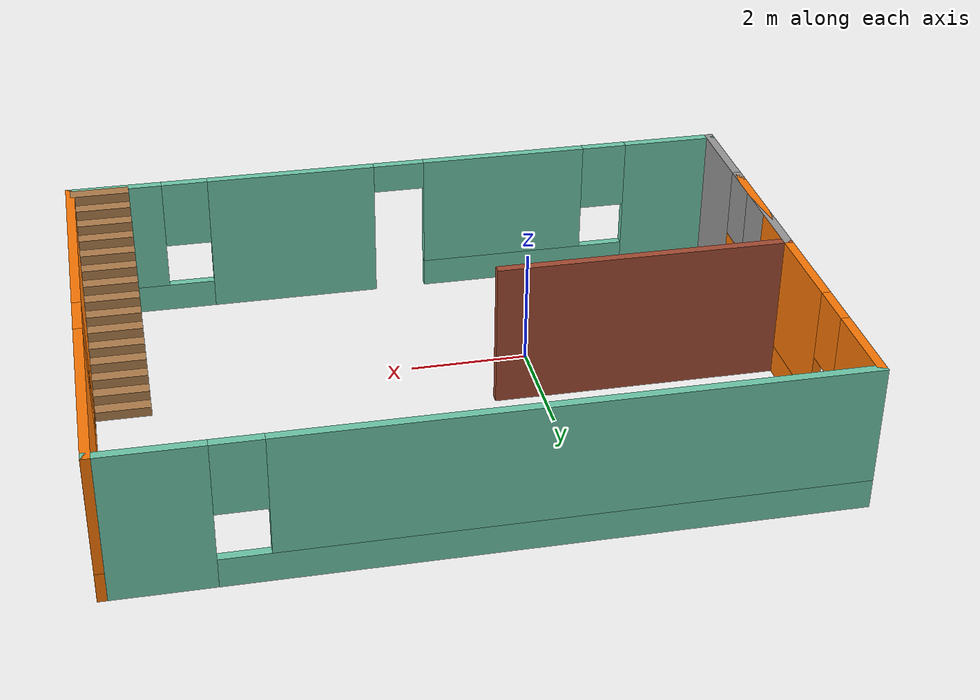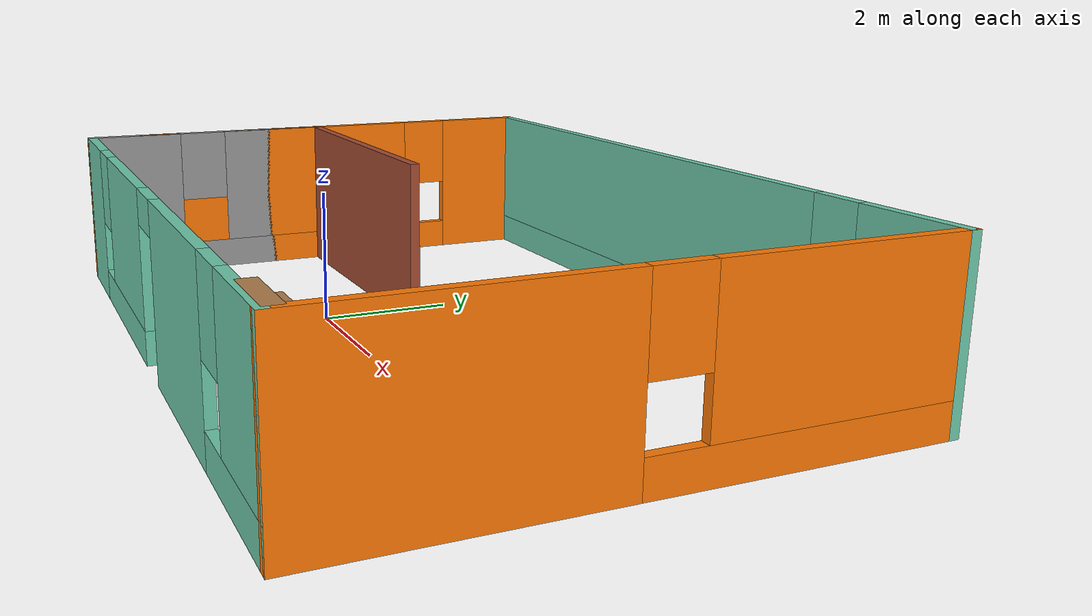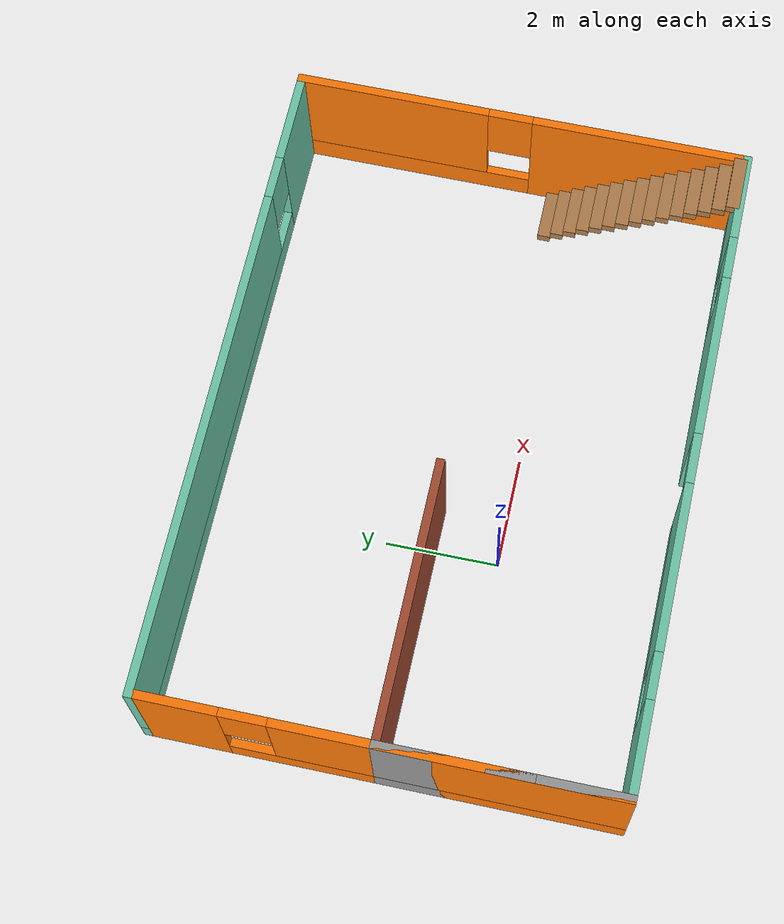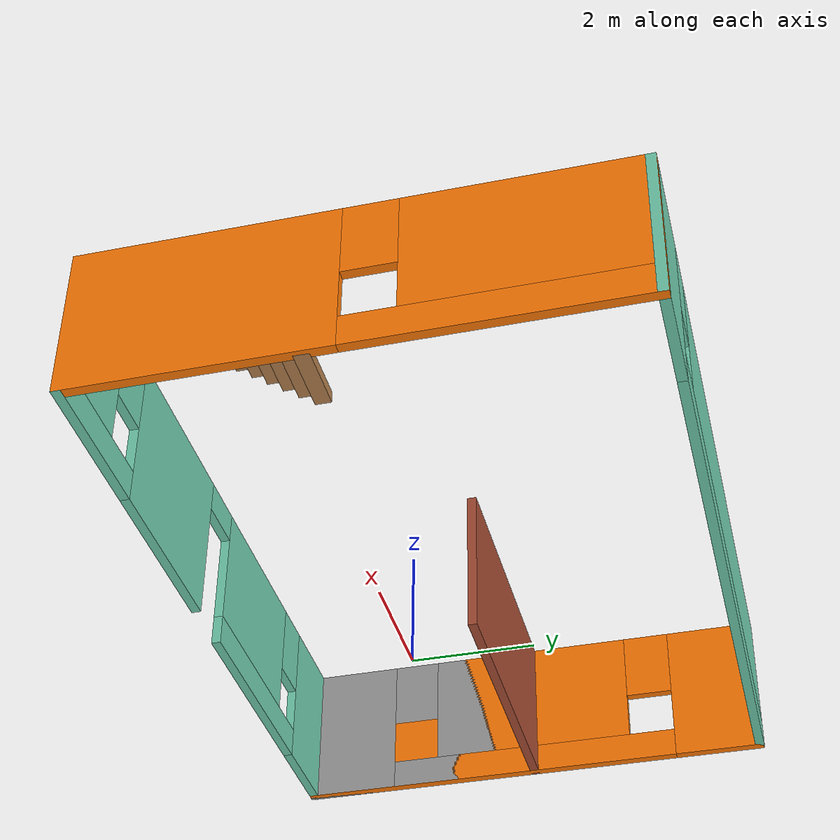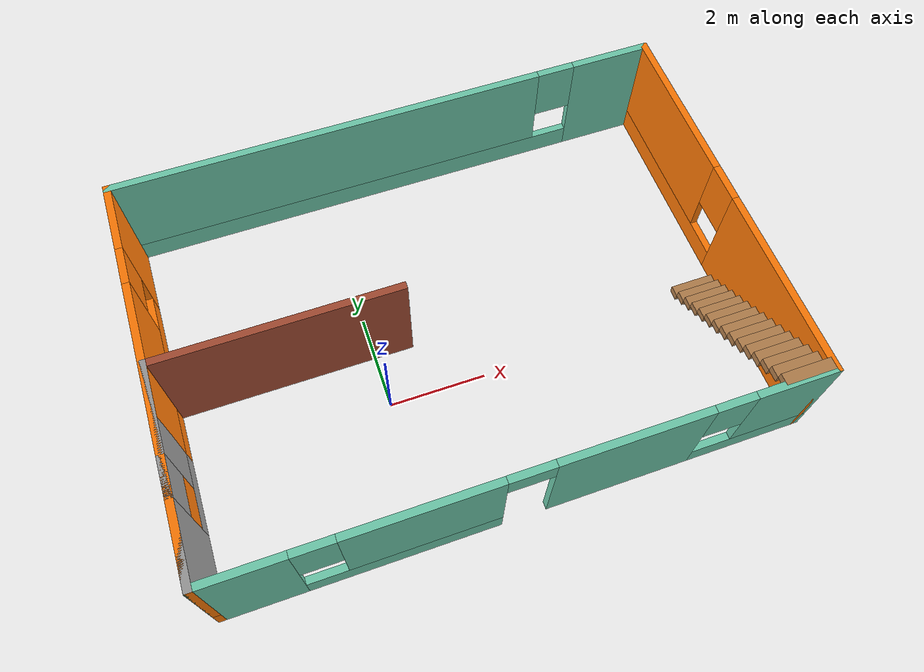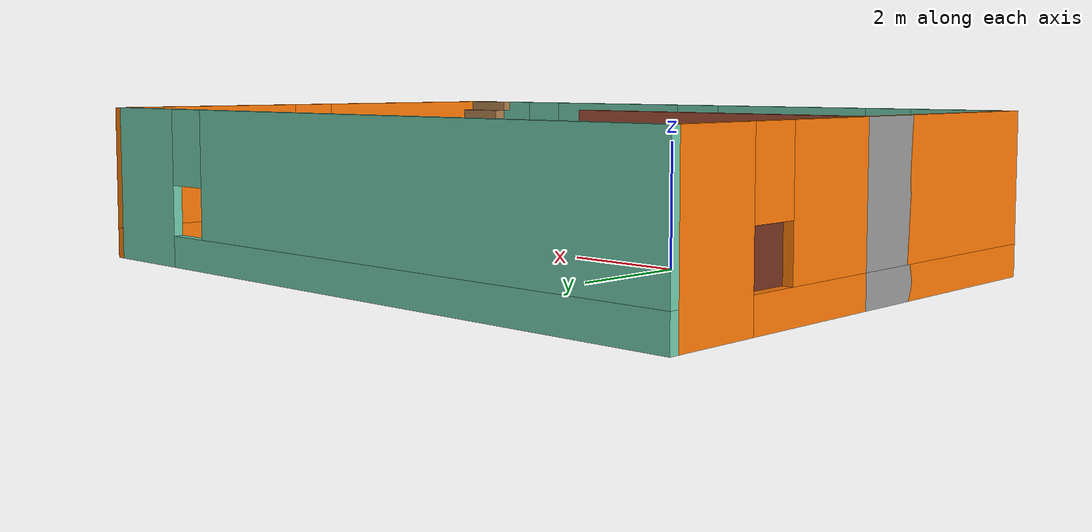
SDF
<?xml version='1.0'?>
<sdf version='1.6'>
  <model name='Wall'>
    <pose frame=''>1.69 1.13 0 0 -0 0</pose>
    <link name='Stairs_0'>
      <visual name='Stairs_0_Visual_0'>
        <pose frame=''>5.29734 -0.669935 0.083333 0 -0 0</pose>
        <geometry>
          <box>
            <size>1 0.233333 0.166667</size>
          </box>
        </geometry>
        <material>
          <script>
            <uri>file://media/materials/scripts/gazebo.material</uri>
            <name>Gazebo/Wood</name>
          </script>
          <ambient>1 1 1 1</ambient>
        </material>
        <meta>
          <layer>0</layer>
        </meta>
      </visual>
      <collision name='Stairs_0_Collision_0'>
        <geometry>
          <box>
            <size>1 0.233333 0.166667</size>
          </box>
        </geometry>
        <pose frame=''>5.29734 -0.669935 0.083333 0 -0 0</pose>
      </collision>
      <visual name='Stairs_0_Visual_1'>
        <pose frame=''>5.29734 -0.903268 0.25 0 -0 0</pose>
        <geometry>
          <box>
            <size>1 0.233333 0.166667</size>
          </box>
        </geometry>
        <material>
          <script>
            <uri>file://media/materials/scripts/gazebo.material</uri>
            <name>Gazebo/Wood</name>
          </script>
          <ambient>1 1 1 1</ambient>
        </material>
        <meta>
          <layer>0</layer>
        </meta>
      </visual>
      <collision name='Stairs_0_Collision_1'>
        <geometry>
          <box>
            <size>1 0.233333 0.166667</size>
          </box>
        </geometry>
        <pose frame=''>5.29734 -0.903268 0.25 0 -0 0</pose>
      </collision>
      <visual name='Stairs_0_Visual_2'>
        <pose frame=''>5.29734 -1.1366 0.416667 0 -0 0</pose>
        <geometry>
          <box>
            <size>1 0.233333 0.166667</size>
          </box>
        </geometry>
        <material>
          <script>
            <uri>file://media/materials/scripts/gazebo.material</uri>
            <name>Gazebo/Wood</name>
          </script>
          <ambient>1 1 1 1</ambient>
        </material>
        <meta>
          <layer>0</layer>
        </meta>
      </visual>
      <collision name='Stairs_0_Collision_2'>
        <geometry>
          <box>
            <size>1 0.233333 0.166667</size>
          </box>
        </geometry>
        <pose frame=''>5.29734 -1.1366 0.416667 0 -0 0</pose>
      </collision>
      <visual name='Stairs_0_Visual_3'>
        <pose frame=''>5.29734 -1.36993 0.583333 0 -0 0</pose>
        <geometry>
          <box>
            <size>1 0.233333 0.166667</size>
          </box>
        </geometry>
        <material>
          <script>
            <uri>file://media/materials/scripts/gazebo.material</uri>
            <name>Gazebo/Wood</name>
          </script>
          <ambient>1 1 1 1</ambient>
        </material>
        <meta>
          <layer>0</layer>
        </meta>
      </visual>
      <collision name='Stairs_0_Collision_3'>
        <geometry>
          <box>
            <size>1 0.233333 0.166667</size>
          </box>
        </geometry>
        <pose frame=''>5.29734 -1.36993 0.583333 0 -0 0</pose>
      </collision>
      <visual name='Stairs_0_Visual_4'>
        <pose frame=''>5.29734 -1.60327 0.75 0 -0 0</pose>
        <geometry>
          <box>
            <size>1 0.233333 0.166667</size>
          </box>
        </geometry>
        <material>
          <script>
            <uri>file://media/materials/scripts/gazebo.material</uri>
            <name>Gazebo/Wood</name>
          </script>
          <ambient>1 1 1 1</ambient>
        </material>
        <meta>
          <layer>0</layer>
        </meta>
      </visual>
      <collision name='Stairs_0_Collision_4'>
        <geometry>
          <box>
            <size>1 0.233333 0.166667</size>
          </box>
        </geometry>
        <pose frame=''>5.29734 -1.60327 0.75 0 -0 0</pose>
      </collision>
      <visual name='Stairs_0_Visual_5'>
        <pose frame=''>5.29734 -1.8366 0.916667 0 -0 0</pose>
        <geometry>
          <box>
            <size>1 0.233333 0.166667</size>
          </box>
        </geometry>
        <material>
          <script>
            <uri>file://media/materials/scripts/gazebo.material</uri>
            <name>Gazebo/Wood</name>
          </script>
          <ambient>1 1 1 1</ambient>
        </material>
        <meta>
          <layer>0</layer>
        </meta>
      </visual>
      <collision name='Stairs_0_Collision_5'>
        <geometry>
          <box>
            <size>1 0.233333 0.166667</size>
          </box>
        </geometry>
        <pose frame=''>5.29734 -1.8366 0.916667 0 -0 0</pose>
      </collision>
      <visual name='Stairs_0_Visual_6'>
        <pose frame=''>5.29734 -2.06994 1.08333 0 -0 0</pose>
        <geometry>
          <box>
            <size>1 0.233333 0.166667</size>
          </box>
        </geometry>
        <material>
          <script>
            <uri>file://media/materials/scripts/gazebo.material</uri>
            <name>Gazebo/Wood</name>
          </script>
          <ambient>1 1 1 1</ambient>
        </material>
        <meta>
          <layer>0</layer>
        </meta>
      </visual>
      <collision name='Stairs_0_Collision_6'>
        <geometry>
          <box>
            <size>1 0.233333 0.166667</size>
          </box>
        </geometry>
        <pose frame=''>5.29734 -2.06994 1.08333 0 -0 0</pose>
      </collision>
      <visual name='Stairs_0_Visual_7'>
        <pose frame=''>5.29734 -2.30327 1.25 0 -0 0</pose>
        <geometry>
          <box>
            <size>1 0.233333 0.166667</size>
          </box>
        </geometry>
        <material>
          <script>
            <uri>file://media/materials/scripts/gazebo.material</uri>
            <name>Gazebo/Wood</name>
          </script>
          <ambient>1 1 1 1</ambient>
        </material>
        <meta>
          <layer>0</layer>
        </meta>
      </visual>
      <collision name='Stairs_0_Collision_7'>
        <geometry>
          <box>
            <size>1 0.233333 0.166667</size>
          </box>
        </geometry>
        <pose frame=''>5.29734 -2.30327 1.25 0 -0 0</pose>
      </collision>
      <visual name='Stairs_0_Visual_8'>
        <pose frame=''>5.29734 -2.5366 1.41667 0 -0 0</pose>
        <geometry>
          <box>
            <size>1 0.233333 0.166667</size>
          </box>
        </geometry>
        <material>
          <script>
            <uri>file://media/materials/scripts/gazebo.material</uri>
            <name>Gazebo/Wood</name>
          </script>
          <ambient>1 1 1 1</ambient>
        </material>
        <meta>
          <layer>0</layer>
        </meta>
      </visual>
      <collision name='Stairs_0_Collision_8'>
        <geometry>
          <box>
            <size>1 0.233333 0.166667</size>
          </box>
        </geometry>
        <pose frame=''>5.29734 -2.5366 1.41667 0 -0 0</pose>
      </collision>
      <visual name='Stairs_0_Visual_9'>
        <pose frame=''>5.29734 -2.76993 1.58333 0 -0 0</pose>
        <geometry>
          <box>
            <size>1 0.233333 0.166667</size>
          </box>
        </geometry>
        <material>
          <script>
            <uri>file://media/materials/scripts/gazebo.material</uri>
            <name>Gazebo/Wood</name>
          </script>
          <ambient>1 1 1 1</ambient>
        </material>
        <meta>
          <layer>0</layer>
        </meta>
      </visual>
      <collision name='Stairs_0_Collision_9'>
        <geometry>
          <box>
            <size>1 0.233333 0.166667</size>
          </box>
        </geometry>
        <pose frame=''>5.29734 -2.76993 1.58333 0 -0 0</pose>
      </collision>
      <visual name='Stairs_0_Visual_10'>
        <pose frame=''>5.29734 -3.00327 1.75 0 -0 0</pose>
        <geometry>
          <box>
            <size>1 0.233333 0.166667</size>
          </box>
        </geometry>
        <material>
          <script>
            <uri>file://media/materials/scripts/gazebo.material</uri>
            <name>Gazebo/Wood</name>
          </script>
          <ambient>1 1 1 1</ambient>
        </material>
        <meta>
          <layer>0</layer>
        </meta>
      </visual>
      <collision name='Stairs_0_Collision_10'>
        <geometry>
          <box>
            <size>1 0.233333 0.166667</size>
          </box>
        </geometry>
        <pose frame=''>5.29734 -3.00327 1.75 0 -0 0</pose>
      </collision>
      <visual name='Stairs_0_Visual_11'>
        <pose frame=''>5.29734 -3.2366 1.91667 0 -0 0</pose>
        <geometry>
          <box>
            <size>1 0.233333 0.166667</size>
          </box>
        </geometry>
        <material>
          <script>
            <uri>file://media/materials/scripts/gazebo.material</uri>
            <name>Gazebo/Wood</name>
          </script>
          <ambient>1 1 1 1</ambient>
        </material>
        <meta>
          <layer>0</layer>
        </meta>
      </visual>
      <collision name='Stairs_0_Collision_11'>
        <geometry>
          <box>
            <size>1 0.233333 0.166667</size>
          </box>
        </geometry>
        <pose frame=''>5.29734 -3.2366 1.91667 0 -0 0</pose>
      </collision>
      <visual name='Stairs_0_Visual_12'>
        <pose frame=''>5.29734 -3.46993 2.08333 0 -0 0</pose>
        <geometry>
          <box>
            <size>1 0.233333 0.166667</size>
          </box>
        </geometry>
        <material>
          <script>
            <uri>file://media/materials/scripts/gazebo.material</uri>
            <name>Gazebo/Wood</name>
          </script>
          <ambient>1 1 1 1</ambient>
        </material>
        <meta>
          <layer>0</layer>
        </meta>
      </visual>
      <collision name='Stairs_0_Collision_12'>
        <geometry>
          <box>
            <size>1 0.233333 0.166667</size>
          </box>
        </geometry>
        <pose frame=''>5.29734 -3.46993 2.08333 0 -0 0</pose>
      </collision>
      <visual name='Stairs_0_Visual_13'>
        <pose frame=''>5.29734 -3.70327 2.25 0 -0 0</pose>
        <geometry>
          <box>
            <size>1 0.233333 0.166667</size>
          </box>
        </geometry>
        <material>
          <script>
            <uri>file://media/materials/scripts/gazebo.material</uri>
            <name>Gazebo/Wood</name>
          </script>
          <ambient>1 1 1 1</ambient>
        </material>
        <meta>
          <layer>0</layer>
        </meta>
      </visual>
      <collision name='Stairs_0_Collision_13'>
        <geometry>
          <box>
            <size>1 0.233333 0.166667</size>
          </box>
        </geometry>
        <pose frame=''>5.29734 -3.70327 2.25 0 -0 0</pose>
      </collision>
      <visual name='Stairs_0_Visual_14'>
        <pose frame=''>5.29734 -3.9366 2.41667 0 -0 0</pose>
        <geometry>
          <box>
            <size>1 0.233333 0.166667</size>
          </box>
        </geometry>
        <material>
          <script>
            <uri>file://media/materials/scripts/gazebo.material</uri>
            <name>Gazebo/Wood</name>
          </script>
          <ambient>1 1 1 1</ambient>
        </material>
        <meta>
          <layer>0</layer>
        </meta>
      </visual>
      <collision name='Stairs_0_Collision_14'>
        <geometry>
          <box>
            <size>1 0.233333 0.166667</size>
          </box>
        </geometry>
        <pose frame=''>5.29734 -3.9366 2.41667 0 -0 0</pose>
      </collision>
    </link>
    <link name='Wall_0'>
      <pose frame=''>0 -4.05 0 0 -0 0</pose>
      <visual name='Wall_0_Visual_0'>
        <pose frame=''>-5.0275 0 1.25 0 -0 0</pose>
        <geometry>
          <box>
            <size>1.695 0.15 2.5</size>
          </box>
        </geometry>
        <material>
          <script>
            <uri>file://media/materials/scripts/gazebo.material</uri>
            <name>Gazebo/Grey</name>
          </script>
          <ambient>0.435294 0.796078 0.67451 1</ambient>
        </material>
        <meta>
          <layer>0</layer>
        </meta>
      </visual>
      <collision name='Wall_0_Collision_0'>
        <geometry>
          <box>
            <size>1.695 0.15 2.5</size>
          </box>
        </geometry>
        <pose frame=''>-5.0275 0 1.25 0 -0 0</pose>
      </collision>
      <visual name='Wall_0_Visual_1'>
        <pose frame=''>1.94676 0 1.25 0 -0 0</pose>
        <geometry>
          <box>
            <size>2.96283 0.15 2.5</size>
          </box>
        </geometry>
        <material>
          <script>
            <uri>file://media/materials/scripts/gazebo.material</uri>
            <name>Gazebo/Grey</name>
          </script>
          <ambient>0.435294 0.796078 0.67451 1</ambient>
        </material>
        <meta>
          <layer>0</layer>
        </meta>
      </visual>
      <collision name='Wall_0_Collision_1'>
        <geometry>
          <box>
            <size>2.96283 0.15 2.5</size>
          </box>
        </geometry>
        <pose frame=''>1.94676 0 1.25 0 -0 0</pose>
      </collision>
      <visual name='Wall_0_Visual_2'>
        <pose frame=''>-2.30733 0 0.25 0 -0 0</pose>
        <geometry>
          <box>
            <size>3.74534 0.15 0.5</size>
          </box>
        </geometry>
        <material>
          <script>
            <uri>file://media/materials/scripts/gazebo.material</uri>
            <name>Gazebo/Grey</name>
          </script>
          <ambient>0.435294 0.796078 0.67451 1</ambient>
        </material>
        <meta>
          <layer>0</layer>
        </meta>
      </visual>
      <collision name='Wall_0_Collision_2'>
        <geometry>
          <box>
            <size>3.74534 0.15 0.5</size>
          </box>
        </geometry>
        <pose frame=''>-2.30733 0 0.25 0 -0 0</pose>
      </collision>
      <visual name='Wall_0_Visual_3'>
        <pose frame=''>4.65159 0 0.25 0 -0 0</pose>
        <geometry>
          <box>
            <size>2.44683 0.15 0.5</size>
          </box>
        </geometry>
        <material>
          <script>
            <uri>file://media/materials/scripts/gazebo.material</uri>
            <name>Gazebo/Grey</name>
          </script>
          <ambient>0.435294 0.796078 0.67451 1</ambient>
        </material>
        <meta>
          <layer>0</layer>
        </meta>
      </visual>
      <collision name='Wall_0_Collision_3'>
        <geometry>
          <box>
            <size>2.44683 0.15 0.5</size>
          </box>
        </geometry>
        <pose frame=''>4.65159 0 0.25 0 -0 0</pose>
      </collision>
      <visual name='Wall_0_Visual_4'>
        <pose frame=''>-1.90733 0 1.5 0 -0 0</pose>
        <geometry>
          <box>
            <size>2.94534 0.15 2</size>
          </box>
        </geometry>
        <material>
          <script>
            <uri>file://media/materials/scripts/gazebo.material</uri>
            <name>Gazebo/Grey</name>
          </script>
          <ambient>0.435294 0.796078 0.67451 1</ambient>
        </material>
        <meta>
          <layer>0</layer>
        </meta>
      </visual>
      <collision name='Wall_0_Collision_4'>
        <geometry>
          <box>
            <size>2.94534 0.15 2</size>
          </box>
        </geometry>
        <pose frame=''>-1.90733 0 1.5 0 -0 0</pose>
      </collision>
      <visual name='Wall_0_Visual_5'>
        <pose frame=''>-1.90733 0 1.5 0 -0 0</pose>
        <geometry>
          <box>
            <size>2.94534 0.15 2</size>
          </box>
        </geometry>
        <material>
          <script>
            <uri>file://media/materials/scripts/gazebo.material</uri>
            <name>Gazebo/Grey</name>
          </script>
          <ambient>0.435294 0.796078 0.67451 1</ambient>
        </material>
        <meta>
          <layer>0</layer>
        </meta>
      </visual>
      <collision name='Wall_0_Collision_5'>
        <geometry>
          <box>
            <size>2.94534 0.15 2</size>
          </box>
        </geometry>
        <pose frame=''>-1.90733 0 1.5 0 -0 0</pose>
      </collision>
      <visual name='Wall_0_Visual_6'>
        <pose frame=''>5.05159 0 1.5 0 -0 0</pose>
        <geometry>
          <box>
            <size>1.64683 0.15 2</size>
          </box>
        </geometry>
        <material>
          <script>
            <uri>file://media/materials/scripts/gazebo.material</uri>
            <name>Gazebo/Grey</name>
          </script>
          <ambient>0.435294 0.796078 0.67451 1</ambient>
        </material>
        <meta>
          <layer>0</layer>
        </meta>
      </visual>
      <collision name='Wall_0_Collision_6'>
        <geometry>
          <box>
            <size>1.64683 0.15 2</size>
          </box>
        </geometry>
        <pose frame=''>5.05159 0 1.5 0 -0 0</pose>
      </collision>
      <visual name='Wall_0_Visual_7'>
        <pose frame=''>-3.78001 0 1.9 0 -0 0</pose>
        <geometry>
          <box>
            <size>0.8 0.15 1.2</size>
          </box>
        </geometry>
        <material>
          <script>
            <uri>file://media/materials/scripts/gazebo.material</uri>
            <name>Gazebo/Grey</name>
          </script>
          <ambient>0.435294 0.796078 0.67451 1</ambient>
        </material>
        <meta>
          <layer>0</layer>
        </meta>
      </visual>
      <collision name='Wall_0_Collision_7'>
        <geometry>
          <box>
            <size>0.8 0.15 1.2</size>
          </box>
        </geometry>
        <pose frame=''>-3.78001 0 1.9 0 -0 0</pose>
      </collision>
      <visual name='Wall_0_Visual_8'>
        <pose frame=''>3.82817 0 1.9 0 -0 0</pose>
        <geometry>
          <box>
            <size>0.8 0.15 1.2</size>
          </box>
        </geometry>
        <material>
          <script>
            <uri>file://media/materials/scripts/gazebo.material</uri>
            <name>Gazebo/Grey</name>
          </script>
          <ambient>0.435294 0.796078 0.67451 1</ambient>
        </material>
        <meta>
          <layer>0</layer>
        </meta>
      </visual>
      <collision name='Wall_0_Collision_8'>
        <geometry>
          <box>
            <size>0.8 0.15 1.2</size>
          </box>
        </geometry>
        <pose frame=''>3.82817 0 1.9 0 -0 0</pose>
      </collision>
      <visual name='Wall_0_Visual_9'>
        <pose frame=''>0.015339 0 2.25 0 -0 0</pose>
        <geometry>
          <box>
            <size>0.9 0.15 0.5</size>
          </box>
        </geometry>
        <material>
          <script>
            <uri>file://media/materials/scripts/gazebo.material</uri>
            <name>Gazebo/Grey</name>
          </script>
          <ambient>0.435294 0.796078 0.67451 1</ambient>
        </material>
        <meta>
          <layer>0</layer>
        </meta>
      </visual>
      <collision name='Wall_0_Collision_9'>
        <geometry>
          <box>
            <size>0.9 0.15 0.5</size>
          </box>
        </geometry>
        <pose frame=''>0.015339 0 2.25 0 -0 0</pose>
      </collision>
      <visual name='Wall_0_Visual_10'>
        <pose frame=''>0.015339 0 2.25 0 -0 0</pose>
        <geometry>
          <box>
            <size>0.9 0.15 0.5</size>
          </box>
        </geometry>
        <material>
          <script>
            <uri>file://media/materials/scripts/gazebo.material</uri>
            <name>Gazebo/Grey</name>
          </script>
          <ambient>0.435294 0.796078 0.67451 1</ambient>
        </material>
        <meta>
          <layer>0</layer>
        </meta>
      </visual>
      <collision name='Wall_0_Collision_10'>
        <geometry>
          <box>
            <size>0.9 0.15 0.5</size>
          </box>
        </geometry>
        <pose frame=''>0.015339 0 2.25 0 -0 0</pose>
      </collision>
    </link>
    <link name='Wall_1'>
      <pose frame=''>5.8 -0 0 0 -0 1.5708</pose>
      <visual name='Wall_1_Visual_0'>
        <pose frame=''>-2.15485 0 1.25 0 -0 0</pose>
        <geometry>
          <box>
            <size>3.9403 0.15 2.5</size>
          </box>
        </geometry>
        <material>
          <script>
            <uri>file://media/materials/scripts/gazebo.material</uri>
            <name>Gazebo/Grey</name>
          </script>
          <ambient>0.996078 0.47451 0.0196078 1</ambient>
        </material>
        <meta>
          <layer>0</layer>
        </meta>
      </visual>
      <collision name='Wall_1_Collision_0'>
        <geometry>
          <box>
            <size>3.9403 0.15 2.5</size>
          </box>
        </geometry>
        <pose frame=''>-2.15485 0 1.25 0 -0 0</pose>
      </collision>
      <visual name='Wall_1_Visual_1'>
        <pose frame=''>1.97015 0 0.25 0 -0 0</pose>
        <geometry>
          <box>
            <size>4.3097 0.15 0.5</size>
          </box>
        </geometry>
        <material>
          <script>
            <uri>file://media/materials/scripts/gazebo.material</uri>
            <name>Gazebo/Grey</name>
          </script>
          <ambient>0.996078 0.47451 0.0196078 1</ambient>
        </material>
        <meta>
          <layer>0</layer>
        </meta>
      </visual>
      <collision name='Wall_1_Collision_1'>
        <geometry>
          <box>
            <size>4.3097 0.15 0.5</size>
          </box>
        </geometry>
        <pose frame=''>1.97015 0 0.25 0 -0 0</pose>
      </collision>
      <visual name='Wall_1_Visual_2'>
        <pose frame=''>2.37015 0 1.5 0 -0 0</pose>
        <geometry>
          <box>
            <size>3.5097 0.15 2</size>
          </box>
        </geometry>
        <material>
          <script>
            <uri>file://media/materials/scripts/gazebo.material</uri>
            <name>Gazebo/Grey</name>
          </script>
          <ambient>0.996078 0.47451 0.0196078 1</ambient>
        </material>
        <meta>
          <layer>0</layer>
        </meta>
      </visual>
      <collision name='Wall_1_Collision_2'>
        <geometry>
          <box>
            <size>3.5097 0.15 2</size>
          </box>
        </geometry>
        <pose frame=''>2.37015 0 1.5 0 -0 0</pose>
      </collision>
      <visual name='Wall_1_Visual_3'>
        <pose frame=''>0.215301 0 1.9 0 -0 0</pose>
        <geometry>
          <box>
            <size>0.8 0.15 1.2</size>
          </box>
        </geometry>
        <material>
          <script>
            <uri>file://media/materials/scripts/gazebo.material</uri>
            <name>Gazebo/Grey</name>
          </script>
          <ambient>0.996078 0.47451 0.0196078 1</ambient>
        </material>
        <meta>
          <layer>0</layer>
        </meta>
      </visual>
      <collision name='Wall_1_Collision_3'>
        <geometry>
          <box>
            <size>0.8 0.15 1.2</size>
          </box>
        </geometry>
        <pose frame=''>0.215301 0 1.9 0 -0 0</pose>
      </collision>
    </link>
    <link name='Wall_2'>
      <pose frame=''>0 4.05 0 0 -0 3.14159</pose>
      <visual name='Wall_2_Visual_0'>
        <pose frame=''>-4.99912 0 1.25 0 -0 0</pose>
        <geometry>
          <box>
            <size>1.75177 0.15 2.5</size>
          </box>
        </geometry>
        <material>
          <script>
            <uri>file://media/materials/scripts/gazebo.material</uri>
            <name>Gazebo/Grey</name>
          </script>
          <ambient>0.435294 0.796078 0.67451 1</ambient>
        </material>
        <meta>
          <layer>0</layer>
        </meta>
      </visual>
      <collision name='Wall_2_Collision_0'>
        <geometry>
          <box>
            <size>1.75177 0.15 2.5</size>
          </box>
        </geometry>
        <pose frame=''>-4.99912 0 1.25 0 -0 0</pose>
      </collision>
      <visual name='Wall_2_Visual_1'>
        <pose frame=''>0.875884 0 0.25 0 -0 0</pose>
        <geometry>
          <box>
            <size>9.99823 0.15 0.5</size>
          </box>
        </geometry>
        <material>
          <script>
            <uri>file://media/materials/scripts/gazebo.material</uri>
            <name>Gazebo/Grey</name>
          </script>
          <ambient>0.435294 0.796078 0.67451 1</ambient>
        </material>
        <meta>
          <layer>0</layer>
        </meta>
      </visual>
      <collision name='Wall_2_Collision_1'>
        <geometry>
          <box>
            <size>9.99823 0.15 0.5</size>
          </box>
        </geometry>
        <pose frame=''>0.875884 0 0.25 0 -0 0</pose>
      </collision>
      <visual name='Wall_2_Visual_2'>
        <pose frame=''>1.27588 0 1.5 0 -0 0</pose>
        <geometry>
          <box>
            <size>9.19823 0.15 2</size>
          </box>
        </geometry>
        <material>
          <script>
            <uri>file://media/materials/scripts/gazebo.material</uri>
            <name>Gazebo/Grey</name>
          </script>
          <ambient>0.435294 0.796078 0.67451 1</ambient>
        </material>
        <meta>
          <layer>0</layer>
        </meta>
      </visual>
      <collision name='Wall_2_Collision_2'>
        <geometry>
          <box>
            <size>9.19823 0.15 2</size>
          </box>
        </geometry>
        <pose frame=''>1.27588 0 1.5 0 -0 0</pose>
      </collision>
      <visual name='Wall_2_Visual_3'>
        <pose frame=''>-3.72323 0 1.9 0 -0 0</pose>
        <geometry>
          <box>
            <size>0.8 0.15 1.2</size>
          </box>
        </geometry>
        <material>
          <script>
            <uri>file://media/materials/scripts/gazebo.material</uri>
            <name>Gazebo/Grey</name>
          </script>
          <ambient>0.435294 0.796078 0.67451 1</ambient>
        </material>
        <meta>
          <layer>0</layer>
        </meta>
      </visual>
      <collision name='Wall_2_Collision_3'>
        <geometry>
          <box>
            <size>0.8 0.15 1.2</size>
          </box>
        </geometry>
        <pose frame=''>-3.72323 0 1.9 0 -0 0</pose>
      </collision>
    </link>
    <link name='Wall_3'>
      <pose frame=''>-5.8 -0 0 0 -0 -1.5708</pose>
      <visual name='Wall_3_Visual_0'>
        <pose frame=''>-3.35834 0 1.25 0 -0 0</pose>
        <geometry>
          <box>
            <size>1.53332 0.15 2.5</size>
          </box>
        </geometry>
        <material>
          <script>
            <uri>file://media/materials/scripts/gazebo.material</uri>
            <name>Gazebo/Grey</name>
          </script>
          <ambient>0.996078 0.47451 0.0196078 1</ambient>
        </material>
        <meta>
          <layer>0</layer>
        </meta>
      </visual>
      <collision name='Wall_3_Collision_0'>
        <geometry>
          <box>
            <size>1.53332 0.15 2.5</size>
          </box>
        </geometry>
        <pose frame=''>-3.35834 0 1.25 0 -0 0</pose>
      </collision>
      <visual name='Wall_3_Visual_1'>
        <pose frame=''>0.766661 0 0.25 0 -0 0</pose>
        <geometry>
          <box>
            <size>6.71668 0.15 0.5</size>
          </box>
        </geometry>
        <material>
          <script>
            <uri>file://media/materials/scripts/gazebo.material</uri>
            <name>Gazebo/Grey</name>
          </script>
          <ambient>0.996078 0.47451 0.0196078 1</ambient>
        </material>
        <meta>
          <layer>0</layer>
        </meta>
      </visual>
      <collision name='Wall_3_Collision_1'>
        <geometry>
          <box>
            <size>6.71668 0.15 0.5</size>
          </box>
        </geometry>
        <pose frame=''>0.766661 0 0.25 0 -0 0</pose>
      </collision>
      <visual name='Wall_3_Visual_2'>
        <pose frame=''>1.16666 0 1.5 0 -0 0</pose>
        <geometry>
          <box>
            <size>5.91668 0.15 2</size>
          </box>
        </geometry>
        <material>
          <script>
            <uri>file://media/materials/scripts/gazebo.material</uri>
            <name>Gazebo/Grey</name>
          </script>
          <ambient>0.996078 0.47451 0.0196078 1</ambient>
        </material>
        <meta>
          <layer>0</layer>
        </meta>
      </visual>
      <collision name='Wall_3_Collision_2'>
        <geometry>
          <box>
            <size>5.91668 0.15 2</size>
          </box>
        </geometry>
        <pose frame=''>1.16666 0 1.5 0 -0 0</pose>
      </collision>
      <visual name='Wall_3_Visual_3'>
        <pose frame=''>-2.19168 0 1.9 0 -0 0</pose>
        <geometry>
          <box>
            <size>0.8 0.15 1.2</size>
          </box>
        </geometry>
        <material>
          <script>
            <uri>file://media/materials/scripts/gazebo.material</uri>
            <name>Gazebo/Grey</name>
          </script>
          <ambient>0.996078 0.47451 0.0196078 1</ambient>
        </material>
        <meta>
          <layer>0</layer>
        </meta>
      </visual>
      <collision name='Wall_3_Collision_3'>
        <geometry>
          <box>
            <size>0.8 0.15 1.2</size>
          </box>
        </geometry>
        <pose frame=''>-2.19168 0 1.9 0 -0 0</pose>
      </collision>
    </link>
    <link name='Wall_4'>
      <pose frame=''>-5.8 -2 0 0 -0 1.5708</pose>
      <visual name='Wall_4_Visual_0'>
        <pose frame=''>-1.32668 0 1.25 0 -0 0</pose>
        <geometry>
          <box>
            <size>1.59663 0.15 2.5</size>
          </box>
        </geometry>
        <material>
          <script>
            <uri>file://media/materials/scripts/gazebo.material</uri>
            <name>Gazebo/Grey</name>
          </script>
          <ambient>1 1 1 1</ambient>
        </material>
        <meta>
          <layer>0</layer>
        </meta>
      </visual>
      <collision name='Wall_4_Collision_0'>
        <geometry>
          <box>
            <size>1.59663 0.15 2.5</size>
          </box>
        </geometry>
        <pose frame=''>-1.32668 0 1.25 0 -0 0</pose>
      </collision>
      <visual name='Wall_4_Visual_1'>
        <pose frame=''>0.798316 0 0.25 0 -0 0</pose>
        <geometry>
          <box>
            <size>2.65337 0.15 0.5</size>
          </box>
        </geometry>
        <material>
          <script>
            <uri>file://media/materials/scripts/gazebo.material</uri>
            <name>Gazebo/Grey</name>
          </script>
          <ambient>1 1 1 1</ambient>
        </material>
        <meta>
          <layer>0</layer>
        </meta>
      </visual>
      <collision name='Wall_4_Collision_1'>
        <geometry>
          <box>
            <size>2.65337 0.15 0.5</size>
          </box>
        </geometry>
        <pose frame=''>0.798316 0 0.25 0 -0 0</pose>
      </collision>
      <visual name='Wall_4_Visual_2'>
        <pose frame=''>1.19832 0 1.5 0 -0 0</pose>
        <geometry>
          <box>
            <size>1.85337 0.15 2</size>
          </box>
        </geometry>
        <material>
          <script>
            <uri>file://media/materials/scripts/gazebo.material</uri>
            <name>Gazebo/Grey</name>
          </script>
          <ambient>1 1 1 1</ambient>
        </material>
        <meta>
          <layer>0</layer>
        </meta>
      </visual>
      <collision name='Wall_4_Collision_2'>
        <geometry>
          <box>
            <size>1.85337 0.15 2</size>
          </box>
        </geometry>
        <pose frame=''>1.19832 0 1.5 0 -0 0</pose>
      </collision>
      <visual name='Wall_4_Visual_3'>
        <pose frame=''>-0.128367 0 1.9 0 -0 0</pose>
        <geometry>
          <box>
            <size>0.8 0.15 1.2</size>
          </box>
        </geometry>
        <material>
          <script>
            <uri>file://media/materials/scripts/gazebo.material</uri>
            <name>Gazebo/Grey</name>
          </script>
          <ambient>1 1 1 1</ambient>
        </material>
        <meta>
          <layer>0</layer>
        </meta>
      </visual>
      <collision name='Wall_4_Collision_3'>
        <geometry>
          <box>
            <size>0.8 0.15 1.2</size>
          </box>
        </geometry>
        <pose frame=''>-0.128367 0 1.9 0 -0 0</pose>
      </collision>
    </link>
    <link name='Wall_5'>
      <collision name='Wall_5_Collision'>
        <geometry>
          <box>
            <size>5 0.15 2.5</size>
          </box>
        </geometry>
        <pose frame=''>0 0 1.25 0 -0 0</pose>
      </collision>
      <visual name='Wall_5_Visual'>
        <pose frame=''>0 0 1.25 0 -0 0</pose>
        <geometry>
          <box>
            <size>5 0.15 2.5</size>
          </box>
        </geometry>
        <material>
          <script>
            <uri>file://media/materials/scripts/gazebo.material</uri>
            <name>Gazebo/Bricks</name>
          </script>
          <ambient>1 1 1 1</ambient>
        </material>
        <meta>
          <layer>0</layer>
        </meta>
      </visual>
      <pose frame=''>-3.375 0.05 0 0 -0 0</pose>
    </link>
    <static>1</static>
  </model>
</sdf>
